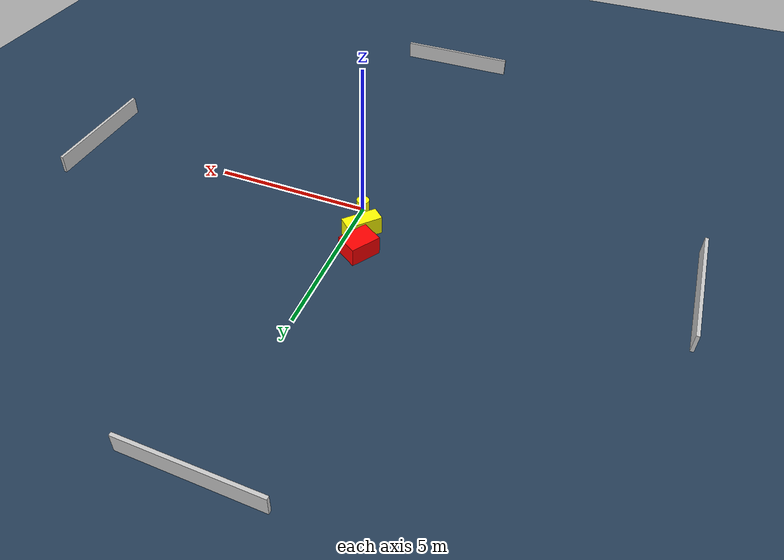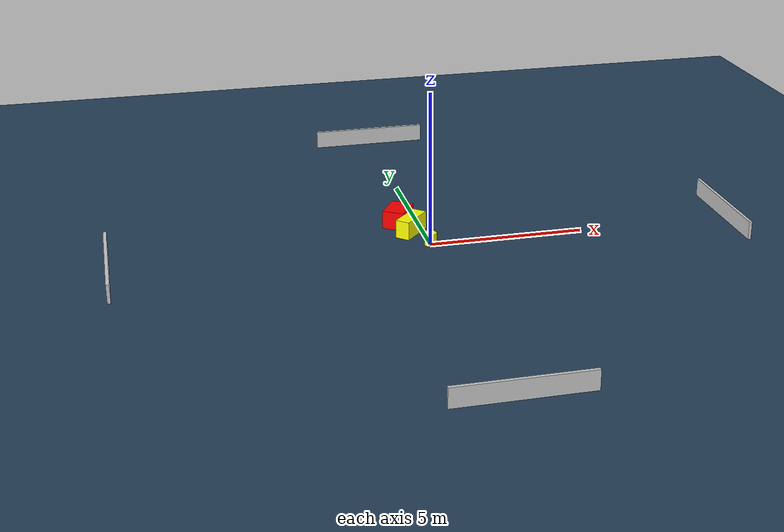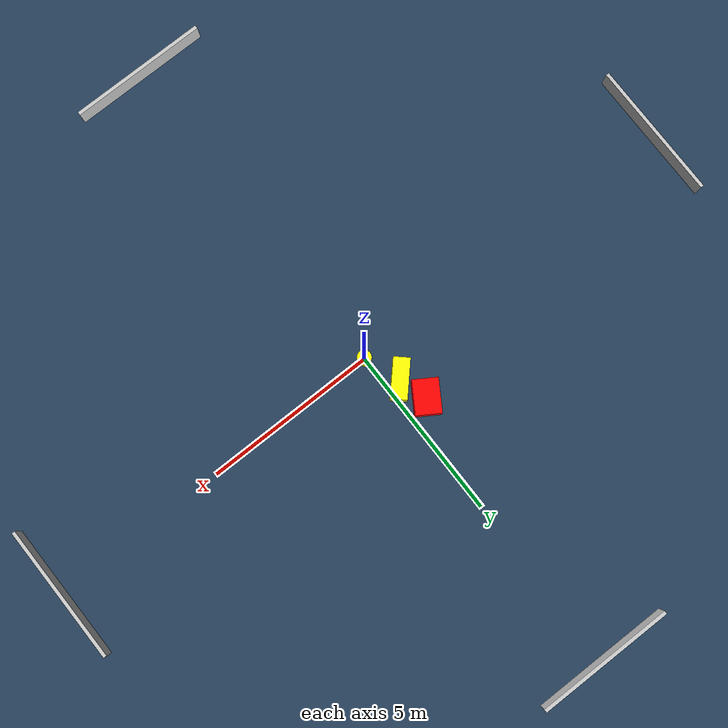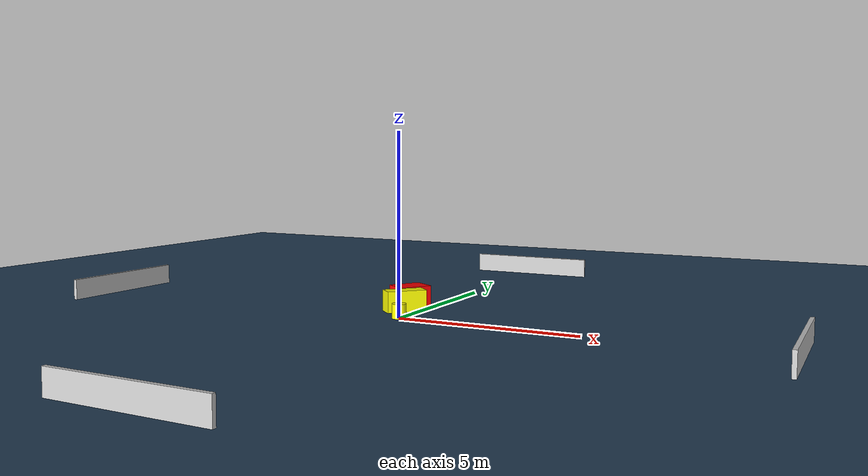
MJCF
<?xml version="1.0" ?>
<mujoco model="generated_environment">
  <option timestep="0.01" integrator="RK4" cone="elliptic"/>
  <default>
    <geom density="1"/>
  </default>
  <asset>
    <texture builtin="gradient" height="3072" name="skybox" rgb1="0.3 0.5 0.7" rgb2="0 0 0" type="skybox" width="512"/>
    <texture builtin="checker" height="300" name="groundplane" rgb1="0.2 0.3 0.4" rgb2="0.1 0.2 0.3" type="2d" width="300"/>
    <material name="groundplane" reflectance="0.2" texrepeat="5 5" texture="groundplane"/>
  </asset>
  <worldbody>
    <light dir="0 0 -1" directional="true" pos="0 0 1.5"/>
    <geom condim="3" friction="0.5 0.005 0.001" material="groundplane" name="floor" pos="0 0 0" size="0 0 0.05" type="plane"/>
    <body name="walls">
      <geom name="wall_1" condim="4" pos="-10.0 0.0 0.3" rgba="0.800000011920929 0.800000011920929 0.800000011920929 1.0" size="0.05 2.0 0.3" type="box"/>
      <geom name="wall_2" condim="4" pos="10.0 0.0 0.3" rgba="0.800000011920929 0.800000011920929 0.800000011920929 1.0" size="0.05 2.0 0.3" type="box"/>
      <geom name="wall_3" condim="4" pos="0.0 -10.0 0.3" rgba="0.800000011920929 0.800000011920929 0.800000011920929 1.0" size="2.0 0.05 0.3" type="box"/>
      <geom name="wall_4" condim="4" pos="0.0 10.0 0.3" rgba="0.800000011920929 0.800000011920929 0.800000011920929 1.0" size="2.0 0.05 0.3" type="box"/>
    </body>
    <body name="robot">
      <joint name="joint_x" type="slide" pos="0 0 0" axis="1 0 0"/>
      <joint name="joint_y" type="slide" pos="0 0 0" axis="0 1 0"/>
      <geom name="robot" type="cylinder" pos="0.0 0.0 0.2" size="0.2 0.2 0.0" mass="5.0" friction="1.0 0.005 0.0001" condim="4" rgba="1.0 1.0 0.0 1.0"/>
    </body>
    <body name="obstacle_1_movable">
      <geom name="obstacle_1_movable" condim="4" pos="-0.3895812406104338 1.042750508794179 0.3" euler="0 0 47.40224521563183" friction="0.0 0.005 0.001" rgba="1.0 1.0 0.0 1.0" size="0.5662244087765826 0.2326093676998567 0.3" type="box" mass="0.1"/>
      <joint type="free"/>
    </body>
    <body name="obstacle_2_static">
      <geom name="obstacle_2_static" condim="4" pos="-0.6421383068724988 1.8527955363127975 0.3" euler="0 0 147.6843210234296" friction="0.0 0.005 0.001" rgba="1.0 0.0 0.0 1.0" size="0.36130423574001413 0.4797563959980208 0.3" type="box"/>
    </body>
  </worldbody>
  <actuator>
    <motor name="actuator_x" joint="joint_x" gear="1" ctrlrange="-1 1"/>
    <motor name="actuator_y" joint="joint_y" gear="1" ctrlrange="-1 1"/>
  </actuator>
</mujoco>
